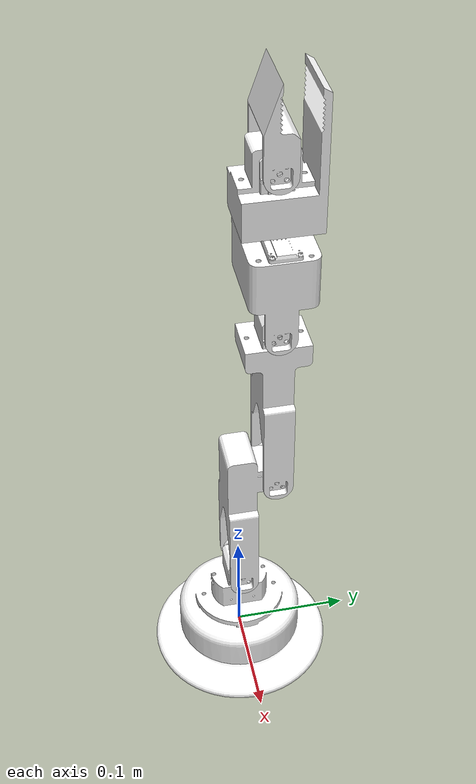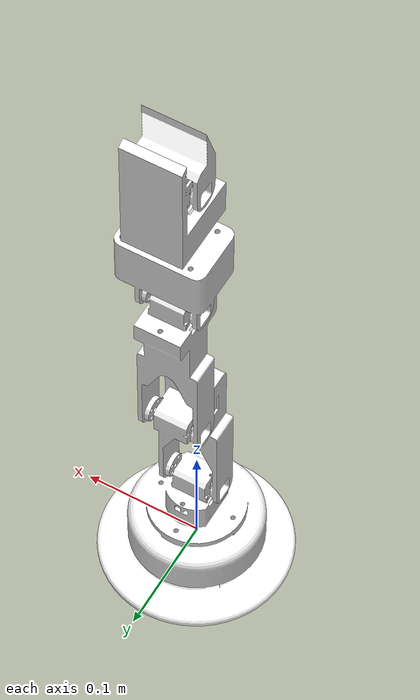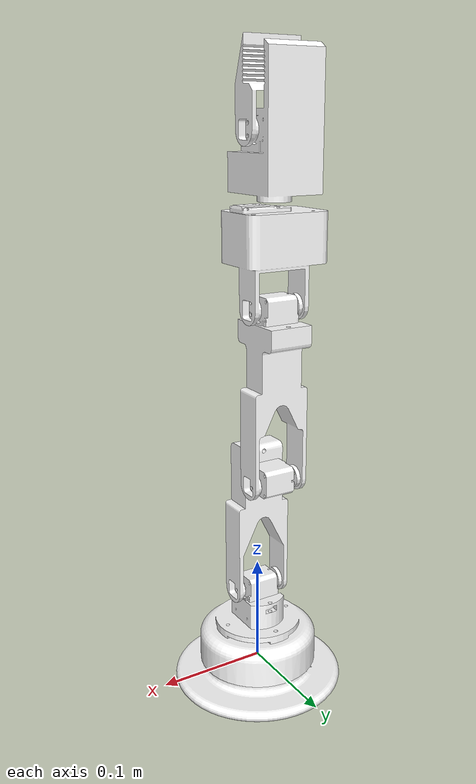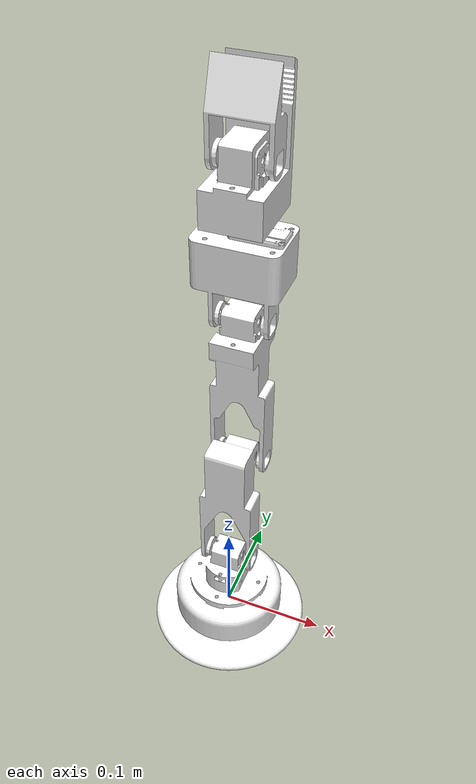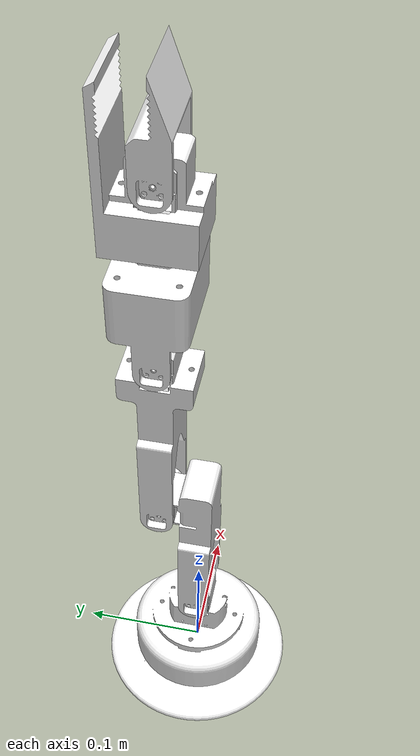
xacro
<?xml version="1.0"?>
<robot xmlns:xacro="http://www.ros.org/wiki/xacro" name="vector_the_arm_description">
    <xacro:arg name="initial_positions_file" default="initial_positions.yaml" />

    <!-- Import vector_the_arm_description urdf file -->
    <xacro:include filename="$(find vector_the_arm_description)/urdf/vector_the_arm_description.urdf" />

    <!-- Import control_xacro -->
    <xacro:include filename="vector_the_arm_description.ros2_control.xacro" />

    <xacro:vector_the_arm_description_ros2_control name="FakeSystem" initial_positions_file="$(arg initial_positions_file)"/>

</robot>

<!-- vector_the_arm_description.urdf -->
<robot
  name="vector_the_arm_description">
  <link
    name="base_link">
    <inertial>
      <origin
        xyz="0.0011876 -0.00024586 -0.0021651"
        rpy="0 0 0" />
      <mass
        value="0.47301" />
      <inertia
        ixx="0.00060142"
        ixy="-7.7811E-06"
        ixz="-4.6303E-06"
        iyy="0.00060151"
        iyz="4.6549E-06"
        izz="0.00099286" />
    </inertial>
    <visual>
      <origin
        xyz="0 0 0"
        rpy="0 0 0" />
      <geometry>
        <mesh
          filename="package://vector_the_arm_description/meshes/base_link.STL" />
      </geometry>
      <material
        name="">
        <color
          rgba="1 1 1 1" />
      </material>
    </visual>
    <collision>
      <origin
        xyz="0 0 0"
        rpy="0 0 0" />
      <geometry>
        <mesh
          filename="package://vector_the_arm_description/meshes/base_link.STL" />
      </geometry>
    </collision>
  </link>
  <link
    name="Link1">
    <inertial>
      <origin
        xyz="-0.00013887 -3.7112E-05 0.037653"
        rpy="0 0 0" />
      <mass
        value="0.16671" />
      <inertia
        ixx="0.00013651"
        ixy="8.7156E-12"
        ixz="6.9648E-08"
        iyy="0.00013384"
        iyz="3.302E-10"
        izz="0.00023132" />
    </inertial>
    <visual>
      <origin
        xyz="0 0 0"
        rpy="0 0 0" />
      <geometry>
        <mesh
          filename="package://vector_the_arm_description/meshes/Link1.STL" />
      </geometry>
      <material
        name="">
        <color
          rgba="1 1 1 1" />
      </material>
    </visual>
    <collision>
      <origin
        xyz="0 0 0"
        rpy="0 0 0" />
      <geometry>
        <mesh
          filename="package://vector_the_arm_description/meshes/Link1.STL" />
      </geometry>
    </collision>
  </link>
  <joint
    name="Joint1"
    type="revolute">
    <origin
      xyz="0 0 0"
      rpy="0 0 3.1416" />
    <parent
      link="base_link" />
    <child
      link="Link1" />
    <axis
      xyz="0 0 1" />
    <limit
      lower="-1.5708"
      upper="1.5708"
      effort="3.0"
      velocity="2.0" />
  </joint>
  <link
    name="Link2">
    <inertial>
      <origin
        xyz="-0.09422 0.003695 -0.022118"
        rpy="0 0 0" />
      <mass
        value="0.12354" />
      <inertia
        ixx="3.6579E-05"
        ixy="-1.8894E-06"
        ixz="3.2641E-07"
        iyy="0.00013792"
        iyz="-6.9245E-08"
        izz="0.00012281" />
    </inertial>
    <visual>
      <origin
        xyz="-0.1347 -0.0128 0"
        rpy="0 0 0" />
      <geometry>
        <mesh
          filename="package://vector_the_arm_description/meshes/Link2.STL" />
      </geometry>
      <material
        name="">
        <color
          rgba="1 1 1 1" />
      </material>
    </visual>
    <collision>
      <origin
        xyz="-0.1347 -0.0128 0"
        rpy="0 0 0" />
      <geometry>
        <mesh
          filename="package://vector_the_arm_description/meshes/Link2.STL" />
      </geometry>
    </collision>
  </link>
  <joint
    name="Joint2"
    type="revolute">
    <origin
      xyz="-0.023219 -0.000282 0.07716"
      rpy="3.1416 1.5708 0" />
    <parent
      link="Link1" />
    <child
      link="Link2" />
    <axis
      xyz="0 0 1" />
    <limit
      lower="-1.82"
      upper="1.82"
      effort="3.0"
      velocity="2.0" />
  </joint>
  <link
    name="Link3">
    <inertial>
      <origin
        xyz="-0.104627 -0.000063 -0.022151"
        rpy="0 0 0" />
      <mass
        value="0.14146" />
      <inertia
        ixx="4.2981E-05"
        ixy="2.0742E-08"
        ixz="3.9424E-07"
        iyy="0.00016334"
        iyz="6.9679E-10"
        izz="0.00015045" />
    </inertial>
    <visual>
      <origin
        xyz="-0.1347 -0.0128 0"
        rpy="0 0 0" />
      <geometry>
        <mesh
          filename="package://vector_the_arm_description/meshes/Link3.STL" />
      </geometry>
      <material
        name="">
        <color
          rgba="1 1 1 1" />
      </material>
    </visual>
    <collision>
      <origin
        xyz="-0.1347 -0.0128 0"
        rpy="0 0 0" />
      <geometry>
        <mesh
          filename="package://vector_the_arm_description/meshes/Link3.STL" />
      </geometry>
    </collision>
  </link>
  <joint
    name="Joint3"
    type="revolute">
    <origin
      xyz="-0.11579 0.029138 0.00049896"
      rpy="0 0 0" />
    <parent
      link="Link2" />
    <child
      link="Link3" />
    <axis
      xyz="0 0 1" />
    <limit
      lower="-1.60"
      upper="1.60"
      effort="3.0"
      velocity="2.0" />
  </joint>
  <link
    name="Link4">
    <inertial>
      <origin
        xyz="-0.057402 -0.000135 -0.022293"
        rpy="0 0 0" />
      <mass
        value="0.18212" />
      <inertia
        ixx="0.00011571"
        ixy="6.8725E-09"
        ixz="4.5323E-06"
        iyy="0.00011637"
        iyz="3.3483E-10"
        izz="8.0361E-05" />
    </inertial>
    <visual>
      <origin
        xyz="-0.1347 -0.0128 0"
        rpy="0 0 0" />
      <geometry>
        <mesh
          filename="package://vector_the_arm_description/meshes/Link4.STL" />
      </geometry>
      <material
        name="">
        <color
          rgba="1 1 1 1" />
      </material>
    </visual>
    <collision>
      <origin
        xyz="-0.1347 -0.0128 0"
        rpy="0 0 0" />
      <geometry>
        <mesh
          filename="package://vector_the_arm_description/meshes/Link4.STL" />
      </geometry>
    </collision>
  </link>
  <joint
    name="Joint4"
    type="revolute">
    <origin
      xyz="-0.15595 -0.000044 -0.043973"
      rpy="3.1416 0 0" />
    <parent
      link="Link3" />
    <child
      link="Link4" />
    <axis
      xyz="0 0 -1" />
    <limit
      lower="-1.55"
      upper="1.55"
      effort="3.0"
      velocity="2.0" />
  </joint>
  <link
    name="Link5">
    <inertial>
      <origin
        xyz="-0.0037812 -7.5442E-05 0.0098443"
        rpy="0 0 0" />
      <mass
        value="0.15471" />
      <inertia
        ixx="0.00011426"
        ixy="2.9963E-08"
        ixz="-2.8589E-05"
        iyy="0.0001344"
        iyz="1.6437E-08"
        izz="7.8003E-05" />
    </inertial>
    <visual>
      <origin
        xyz="0 0 0"
        rpy="0 0 0" />
      <geometry>
        <mesh
          filename="package://vector_the_arm_description/meshes/Link5.STL" />
      </geometry>
      <material
        name="">
        <color
          rgba="1 1 1 1" />
      </material>
    </visual>
    <collision>
      <origin
        xyz="0 0 0"
        rpy="0 0 0" />
      <geometry>
        <mesh
          filename="package://vector_the_arm_description/meshes/Link5.STL" />
      </geometry>
    </collision>
  </link>
  <joint
    name="Joint5"
    type="continuous">
    <origin
      xyz="-0.1347 -0.000286 -0.022559"
      rpy="1.5708 0 1.5708" />
    <parent
      link="Link4" />
    <child
      link="Link5" />
    <axis
      xyz="0 0 1" />
  </joint>
  <link
    name="gripper">
    <inertial>
      <origin
        xyz="-0.039632 -0.0052695 0.00073607"
        rpy="0 0 0" />
      <mass
        value="0.020259" />
      <inertia
        ixx="7.7248E-06"
        ixy="-5.4478E-07"
        ixz="-1.4244E-08"
        iyy="1.3735E-05"
        iyz="-3.6395E-09"
        izz="7.4629E-06" />
    </inertial>
    <visual>
      <origin
        xyz="0.008531 0.002823 0"
        rpy="0 0 0" />
      <geometry>
        <mesh
          filename="package://vector_the_arm_description/meshes/gripper.STL" />
      </geometry>
      <material
        name="">
        <color
          rgba="1 1 1 1" />
      </material>
    </visual>
    <collision>
      <origin
        xyz="0.008531 0.002823 0"
        rpy="0 0 0" />
      <geometry>
        <mesh
          filename="package://vector_the_arm_description/meshes/gripper.STL" />
      </geometry>
    </collision>
  </link>
  <joint
    name="gripper_joint"
    type="revolute">
    <origin
      xyz="0.002823 0 -0.008531"
      rpy="1.5708 -1.5708 0" />
    <parent
      link="Link5" />
    <child
      link="gripper" />
    <axis
      xyz="0 0 1" />
    <!-- jaw: 0 = CAD pose (enc 1745, mid); +1.658 = fully open; -0.468 = fully closed -->
    <limit
      lower="-0.468"
      upper="1.658"
      effort="1.0"
      velocity="1.0" />
  </joint>
</robot>
